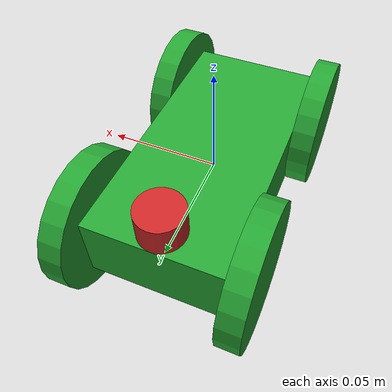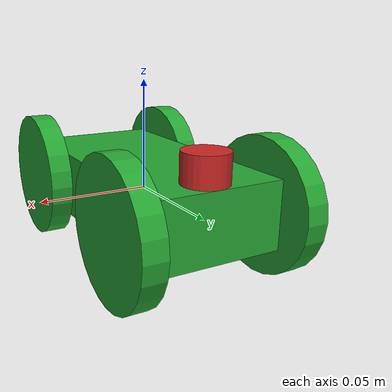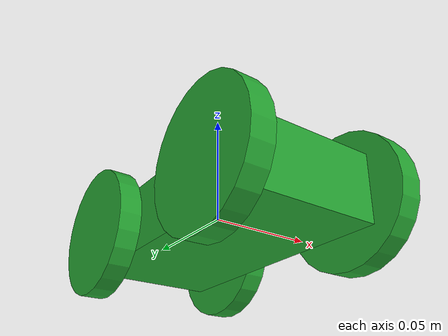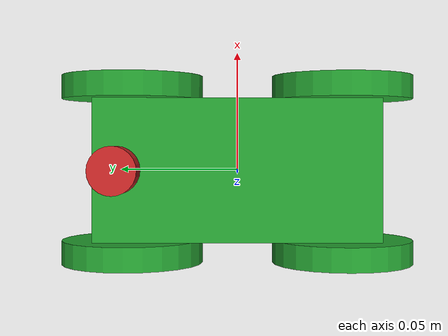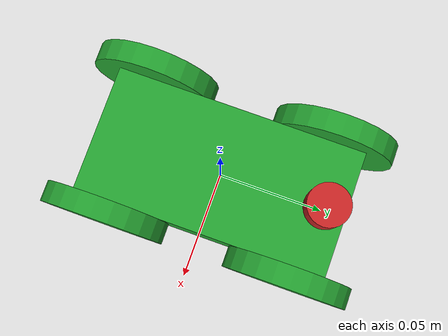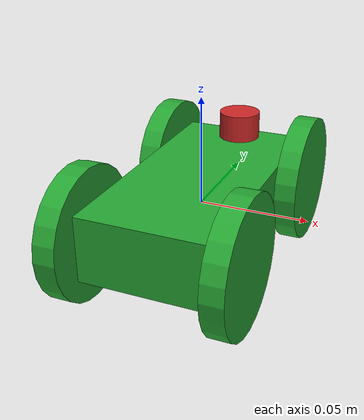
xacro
<?xml version='1.0'?>
<robot name="robot1" xmlns:xacro="http://www.ros.org/wiki/xacro">

<!--TODO Change mass (low mass was resulting in strange movement) -->

  <xacro:include filename="$(find multiple_robot_slam)/urdf/robot1.gazebo" />
  <link name="robot_footprint"></link>

  <gazebo reference="chassis">
    <material>Gazebo/Green</material>
  </gazebo>
  <gazebo reference="front_right_wheel">
    <material>Gazebo/Orange</material>
  </gazebo>
  <gazebo reference="front_left_wheel" >
    <material>Gazebo/Orange</material>
  </gazebo>
  <gazebo reference="back_right_wheel">
    <material>Gazebo/Orange</material>
  </gazebo>
  <gazebo reference="back_left_wheel">
    <material>Gazebo/Orange</material>
  </gazebo>
  <gazebo reference="hokuyo">
    <material>Gazebo/Red</material>
  </gazebo>

  <link name='chassis'>
    <pose>0 0 0.1 0 0 0</pose>

    <inertial>
      <mass value="2"/>
      <origin xyz="0 0 -0.01" rpy=" 0 0 0"/>
      <inertia
          ixx="0.1" ixy="0" ixz="0"
          iyy="0.1" iyz="0"
          izz="0.1"
      />
    </inertial>

    <visual name='chassis_visual'>
      <origin xyz="0 0 0" rpy=" 0 0 0"/>
      <geometry>
        <box size=".06 .12 .03"/>
      </geometry>
    </visual>

    <collision name='chassis_collision'>
      <origin xyz="0 0 0" rpy=" 0 0 0"/>
      <geometry>
        <box size=".06 .12 .03"/>
      </geometry>
    </collision>
  </link>

  <link name='front_right_wheel'>
    <inertial>
      <mass value=".1"/>
      <origin xyz="0.0 0 0" rpy=" 0 0 0"/>
      <inertia
          ixx="0.001" ixy="0" ixz="0"
          iyy="0.001" iyz="0"
          izz="0.001"
      />
    </inertial>

    <visual name='front_right_wheel_visual'>
      <origin xyz="0 0 0" rpy=" 0 1.5707 0"/>
      <geometry>
        <cylinder radius="0.03" length="0.01"/>
      </geometry>
      <material name="darkGreen"/>
    </visual>

    <collision name='front_right_wheel_collision'>
      <origin xyz="0 0 0" rpy=" 0 1.5707 0"/>
      <geometry>
        <cylinder radius="0.03" length="0.01"/>
      </geometry>
    </collision>
  </link>

  <link name='front_left_wheel'>
    <inertial>
      <mass value=".1"/>
      <origin xyz="0.0 0 0" rpy=" 0 0 0"/>
      <inertia
          ixx="0.001" ixy="0" ixz="0"
          iyy="0.001" iyz="0"
          izz="0.001"
      />
    </inertial>

    <visual name='front_left_wheel_visual'>
      <origin xyz="0 0 0" rpy=" 0 1.5707 0"/>
      <geometry>
        <cylinder radius="0.03" length="0.01"/>
      </geometry>
      <material name="darkGreen"/>
    </visual>

    <collision name='front_left_wheel_collision'>
      <origin xyz="0 0 0" rpy=" 0 1.5707 0"/>
      <geometry>
        <cylinder radius="0.03" length="0.01"/>
      </geometry>
    </collision>
  </link>

  <link name='back_right_wheel'>
    <inertial>
      <mass value=".1"/>
      <origin xyz="0.0 0 0" rpy=" 0 0 0"/>
      <inertia
          ixx="0.001" ixy="0" ixz="0"
          iyy="0.001" iyz="0"
          izz="0.001"
      />
    </inertial>

    <visual name='back_right_wheel_visual'>
      <origin xyz="0 0 0" rpy=" 0 1.5707 0"/>
      <geometry>
        <cylinder radius="0.03" length="0.01"/>
      </geometry>
      <material name="darkGreen"/>
    </visual>

    <collision name='back_right_wheel_collision'>
      <origin xyz="0 0 0" rpy=" 0 1.5707 0"/>
      <geometry>
        <cylinder radius="0.03" length="0.01"/>
      </geometry>
    </collision>
  </link>

  <link name='back_left_wheel'>
    <inertial>
      <mass value=".1"/>
      <origin xyz="0.0 0 0" rpy=" 0 0 0"/>
      <inertia
          ixx="0.001" ixy="0" ixz="0"
          iyy="0.001" iyz="0"
          izz="0.001"
      />
    </inertial>

    <visual name='back_left_wheel_visual'>
      <origin xyz="0 0 0" rpy=" 0 1.5707 0"/>
      <geometry>
        <cylinder radius="0.03" length="0.01"/>
      </geometry>
      <material name="darkGreen"/>
    </visual>

    <collision name='back_left_wheel_collision'>
      <origin xyz="0 0 0" rpy=" 0 1.5707 0"/>
      <geometry>
        <cylinder radius="0.03" length="0.01"/>
      </geometry>
    </collision>
  </link>

<!-- Laser Sensor -->
  <link name='hokuyo'>
    <inertial>
      <mass value="1e-5"/>
      <origin xyz="0 0 0" rpy=" 0 0 0"/>
      <inertia
    	  ixx="1e-6" ixy="0" ixz="0"
    	  iyy="1e-6" iyz="0"
    	  izz="1e-6"
      />
    </inertial>

    <visual name='laser_visual'>
      <origin xyz="0 0 0" rpy=" 0 0 0"/>
      <geometry>
	        <cylinder radius="0.01" length="0.02"/>
      </geometry>
    </visual>

    <collision name='laser_collision'>
      <origin xyz="0 0 0" rpy=" 0 0 0"/>
      <geometry>
	       <cylinder radius="0.01" length="0.02"/>
      </geometry>
    </collision>
  </link>

<!-- Joints -->
  <joint name="robot_footprint_joint" type="fixed">
    <origin xyz="0 0 0" rpy="0 0 0" />
    <parent link="robot_footprint"/>
    <child link="chassis" />
  </joint>

  <joint type="continuous" name="front_right_wheel_hinge">
    <origin xyz="0.035 0.045 0" rpy="0 0 0"/>
    <child link="front_right_wheel"/>
    <parent link="chassis"/>
    <axis xyz="1 0 0" rpy="0 0 0"/>
    <limit effort="10000" velocity="1000"/>
    <dynamics damping="1.0" friction="1.0"/>
   </joint>

  <joint type="continuous" name="front_left_wheel_hinge">
      <origin xyz="-0.035 0.045 0" rpy="0 0 0"/>
      <child link="front_left_wheel"/>
      <parent link="chassis"/>
      <axis xyz="1 0 0" rpy="0 0 0"/>
      <limit effort="10000" velocity="1000"/>
      <dynamics damping="1.0" friction="1.0"/>
    </joint>

  <joint type="continuous" name="back_right_wheel_hinge">
      <origin xyz="0.035 -0.045 0" rpy="0 0 0"/>
      <child link="back_right_wheel"/>
      <parent link="chassis"/>
      <axis xyz="1 0 0" rpy="0 0 0"/>
      <limit effort="10000" velocity="1000"/>
      <dynamics damping="1.0" friction="1.0"/>
    </joint>

  <joint type="continuous" name="back_left_wheel_hinge">
      <origin xyz="-0.035 -0.045 0" rpy="0 0 0"/>
      <child link="back_left_wheel"/>
      <parent link="chassis"/>
      <axis xyz="1 0 0" rpy="0 0 0"/>
      <limit effort="10000" velocity="1000"/>
      <dynamics damping="1.0" friction="1.0"/>
    </joint>

<joint type="fixed" name="hokuyo_joint">
    <origin xyz="0 0.05 0.018" rpy="0 0 1.5707"/>
    <child link="hokuyo"/>
    <parent link="chassis"/>
    <axis xyz="0 1 0" rpy="0 0 0"/>
</joint>
</robot>
